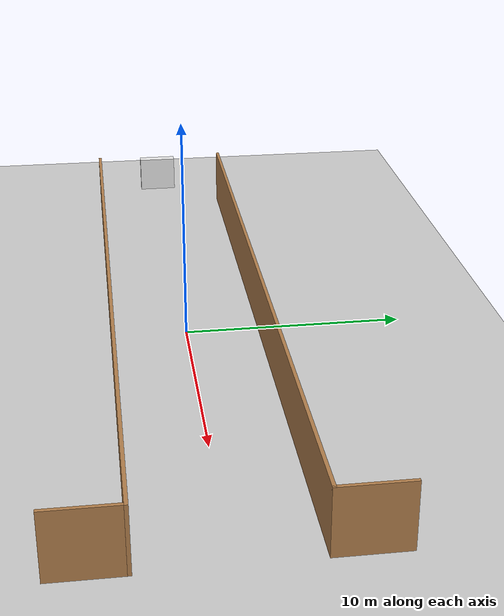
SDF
<sdf version='1.4'>
  <world name='default'>
    <!-- A global light source -->
    <include>
      <uri>model://sun</uri>
    </include>

    <!-- A ground plane -->
    <include>
      <uri>model://ground_plane</uri>
    </include>

    <physics type="ode">
      <real_time_update_rate>1000.0</real_time_update_rate>
      <max_step_size>0.001</max_step_size>
      <real_time_factor>1</real_time_factor>
      <ode>
        <solver>
          <type>quick</type>
          <iters>150</iters>
          <precon_iters>0</precon_iters>
          <sor>1.400000</sor>
          <use_dynamic_moi_rescaling>1</use_dynamic_moi_rescaling>
        </solver>
        <constraints>
          <cfm>0.00001</cfm>
          <erp>0.2</erp>
          <contact_max_correcting_vel>2000.000000</contact_max_correcting_vel>
          <contact_surface_layer>0.01000</contact_surface_layer>
        </constraints>
      </ode>
    </physics>

    <!-- Load model -->
    <include>
      <uri>model://turtlebot3_tunnel</uri>
    </include>

    <model name='obstacle'>
      <pose frame=''>0 0 0 0 -0 0</pose>
      <link name='obstacle'>
        <collision name='obstacle_1'>
          <pose>-20 0 0.25 0 0 0</pose>
          <geometry>
            <box>
              <size>0.5 2 3.1</size>
            </box>
          </geometry>
          <max_contacts>10</max_contacts>
          <surface>
            <bounce/>
            <friction>
              <ode/>
            </friction>
            <contact>
              <ode/>
            </contact>
          </surface>
        </collision>

        <visual name='obstacle_1'>
          <pose>-20 0 0.25 0 0 0</pose>
          <geometry>
            <box>
              <size>0.5 2 3.1</size>
            </box>
          </geometry>
          <material>
            <script>
              <uri>file://media/materials/scripts/gazebo.material</uri>
              <name>Gazebo/White</name>
            </script>
          </material>
        </visual>

      </link>
      <static>1</static>
    </model>

    <scene>
      <ambient>0.4 0.4 0.4 1</ambient>
      <background>0.7 0.7 0.7 1</background>
      <shadows>true</shadows>
    </scene>

    <gui fullscreen='0'>
      <camera name='user_camera'>
        <pose>0.0 0.0 17.0 0 1.5708 0</pose>
        <view_controller>orbit</view_controller>
      </camera>
    </gui>
  </world>
</sdf>

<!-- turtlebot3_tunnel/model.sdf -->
<sdf version='1.6'>
  <model name='turtlebot3_square'>
    <pose frame=''>0 0 0 0 -0 0</pose>
    <link name='Wall_10'>
      <collision name='Wall_10_Collision'>
        <geometry>
          <box>
            <size>3 0.15 3.1</size>
          </box>
        </geometry>
        <pose frame=''>0 0 1.25 0 -0 0</pose>
      </collision>
      <visual name='Wall_10_Visual'>
        <pose frame=''>0 0 1.25 0 -0 0</pose>
        <geometry>
          <box>
            <size>3 0.15 3.1</size>
          </box>
        </geometry>
        <material>
          <script>
            <uri>file://media/materials/scripts/gazebo.material</uri>
            <name>Gazebo/Wood</name>
          </script>
          <ambient>1 1 1 1</ambient>
        </material>
      </visual>
      <pose frame=''>17.3988 4.84431 0 0 -0 1.5708</pose>
    </link>
    <link name='Wall_18'>
      <collision name='Wall_18_Collision'>
        <geometry>
          <box>
            <size>35 0.15 3.1</size>
          </box>
        </geometry>
        <pose frame=''>0 0 1.25 0 -0 0</pose>
      </collision>
      <visual name='Wall_18_Visual'>
        <pose frame=''>0 0 1.25 0 -0 0</pose>
        <geometry>
          <box>
            <size>35 0.15 3.1</size>
          </box>
        </geometry>
        <material>
          <script>
            <uri>file://media/materials/scripts/gazebo.material</uri>
            <name>Gazebo/Wood</name>
          </script>
          <ambient>1 1 1 1</ambient>
        </material>
      </visual>
      <pose frame=''>0.026235 -3.41931 0 0 -0 0</pose>
    </link>
    <link name='Wall_19'>
      <collision name='Wall_19_Collision'>
        <geometry>
          <box>
            <size>3 0.15 3.1</size>
          </box>
        </geometry>
        <pose frame=''>0 0 1.25 0 -0 0</pose>
      </collision>
      <visual name='Wall_19_Visual'>
        <pose frame=''>0 0 1.25 0 -0 0</pose>
        <geometry>
          <box>
            <size>3 0.15 3.1</size>
          </box>
        </geometry>
        <material>
          <script>
            <uri>file://media/materials/scripts/gazebo.material</uri>
            <name>Gazebo/Wood</name>
          </script>
          <ambient>1 1 1 1</ambient>
        </material>
      </visual>
      <pose frame=''>17.4512 -4.84431 0 0 -0 -1.5708</pose>
    </link>
    <link name='Wall_9'>
      <collision name='Wall_9_Collision'>
        <geometry>
          <box>
            <size>35 0.15 3.1</size>
          </box>
        </geometry>
        <pose frame=''>0 0 1.25 0 -0 0</pose>
      </collision>
      <visual name='Wall_9_Visual'>
        <pose frame=''>0 0 1.25 0 -0 0</pose>
        <geometry>
          <box>
            <size>35 0.15 3.1</size>
          </box>
        </geometry>
        <material>
          <script>
            <uri>file://media/materials/scripts/gazebo.material</uri>
            <name>Gazebo/Wood</name>
          </script>
          <ambient>1 1 1 1</ambient>
        </material>
      </visual>
      <pose frame=''>-0.026235 3.41931 0 0 -0 0</pose>
    </link>
    <static>1</static>
  </model>
</sdf>
